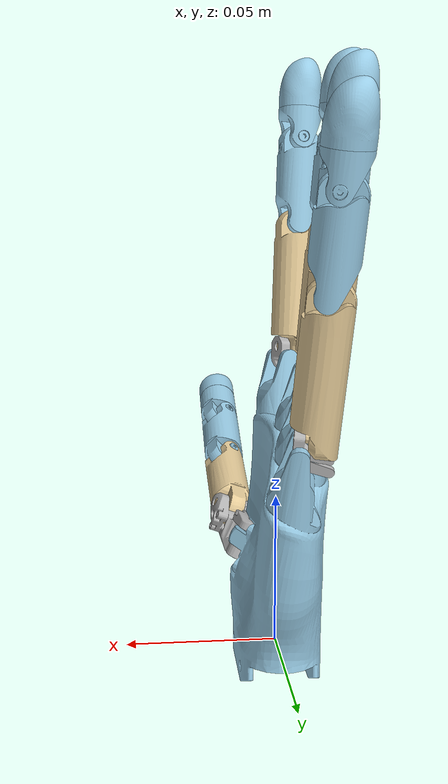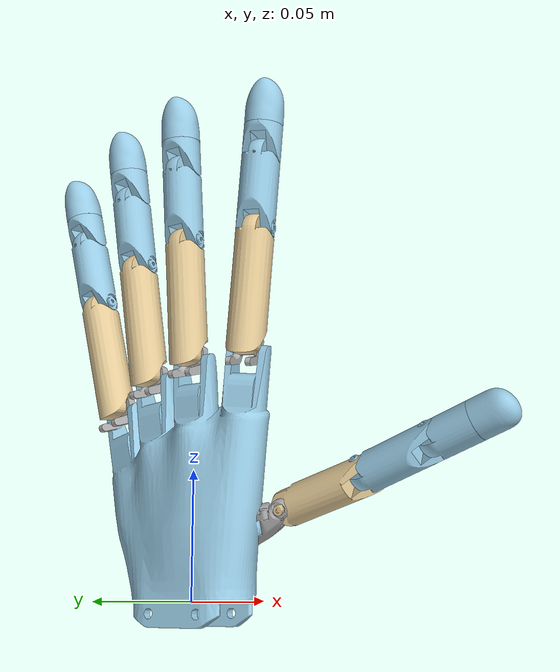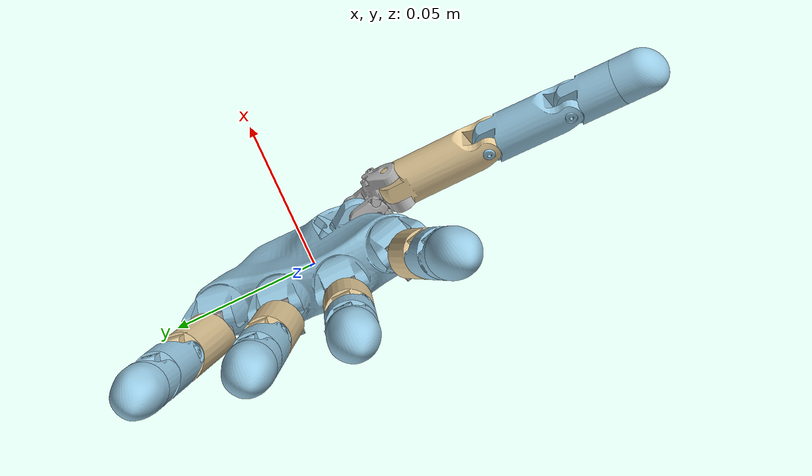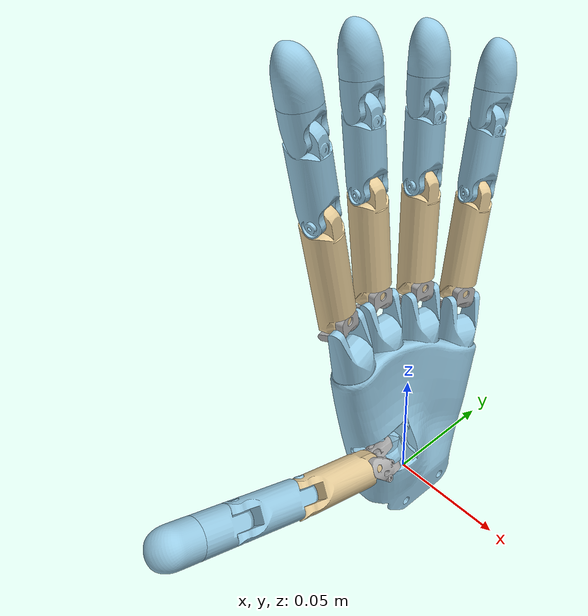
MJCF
<mujoco model="wujihand-left">
  <compiler angle="radian" meshdir="../meshes/left/" />

  <option jacobian="sparse" integrator="RK4" timestep="0.002" solver="Newton" iterations="50" tolerance="1e-10" /><default><joint armature="0.0002" damping="0.0" /></default><asset>
    <mesh name="left_palm_link" content_type="model/stl" file="left_palm_link.STL" />
    <mesh name="left_finger1_link1" content_type="model/stl" file="left_finger1_link1.STL" />
    <mesh name="left_finger1_link2" content_type="model/stl" file="left_finger1_link2.STL" />
    <mesh name="left_finger1_link3" content_type="model/stl" file="left_finger1_link3.STL" />
    <mesh name="left_finger1_link4" content_type="model/stl" file="left_finger1_link4.STL" />
    <mesh name="left_finger1_tip_link" content_type="model/stl" file="left_finger1_tip_link.STL" />
    <mesh name="left_finger2_link1" content_type="model/stl" file="left_finger2_link1.STL" />
    <mesh name="left_finger2_link2" content_type="model/stl" file="left_finger2_link2.STL" />
    <mesh name="left_finger2_link3" content_type="model/stl" file="left_finger2_link3.STL" />
    <mesh name="left_finger2_link4" content_type="model/stl" file="left_finger2_link4.STL" />
    <mesh name="left_finger2_tip_link" content_type="model/stl" file="left_finger2_tip_link.STL" />
    <mesh name="left_finger3_link1" content_type="model/stl" file="left_finger3_link1.STL" />
    <mesh name="left_finger3_link2" content_type="model/stl" file="left_finger3_link2.STL" />
    <mesh name="left_finger3_link3" content_type="model/stl" file="left_finger3_link3.STL" />
    <mesh name="left_finger3_link4" content_type="model/stl" file="left_finger3_link4.STL" />
    <mesh name="left_finger3_tip_link" content_type="model/stl" file="left_finger3_tip_link.STL" />
    <mesh name="left_finger4_link1" content_type="model/stl" file="left_finger4_link1.STL" />
    <mesh name="left_finger4_link2" content_type="model/stl" file="left_finger4_link2.STL" />
    <mesh name="left_finger4_link3" content_type="model/stl" file="left_finger4_link3.STL" />
    <mesh name="left_finger4_link4" content_type="model/stl" file="left_finger4_link4.STL" />
    <mesh name="left_finger4_tip_link" content_type="model/stl" file="left_finger4_tip_link.STL" />
    <mesh name="left_finger5_link1" content_type="model/stl" file="left_finger5_link1.STL" />
    <mesh name="left_finger5_link2" content_type="model/stl" file="left_finger5_link2.STL" />
    <mesh name="left_finger5_link3" content_type="model/stl" file="left_finger5_link3.STL" />
    <mesh name="left_finger5_link4" content_type="model/stl" file="left_finger5_link4.STL" />
    <mesh name="left_finger5_tip_link" content_type="model/stl" file="left_finger5_tip_link.STL" />
  </asset>

  <worldbody>
    <body name="left_palm_link"><inertial pos="-0.00297879327955292 -0.000452550870710431 0.0366547088987225" mass="0.16914" quat="-0.01772809 -0.04274722 0.09308295 0.99458230" diaginertia="1.40677446e-04 9.58896475e-05 5.81329061e-05" /><geom type="mesh" contype="0" conaffinity="0" group="1" density="0" rgba="0.6 0.8 0.9 1" mesh="left_palm_link" />
    <geom type="mesh" rgba="0.6 0.8 0.9 1" mesh="left_palm_link" contype="1" conaffinity="1" />
    <body name="left_finger1_link1" pos="0.0084399 -0.020587 0.028893" quat="0.682219 0.617669 0.0805047 0.382859">
      <inertial pos="-0.00246636 0.00124336 0.00779645" quat="0.904243 0.21652 0.0443878 -0.365368" mass="0.0075" diaginertia="3.37599e-07 3.01198e-07 2.11203e-07" />
      <joint name="left_finger1_joint1" pos="0 0 0" axis="0 1 0" range="0.0475 1.6033" actuatorfrcrange="-0.4452 0.4452" armature="0.0005" />
      <geom type="mesh" contype="0" conaffinity="0" group="1" density="0" rgba="0.7 0.7 0.7 1" mesh="left_finger1_link1" />
      <geom type="mesh" rgba="0.7 0.7 0.7 1" mesh="left_finger1_link1" contype="0" conaffinity="0" />
      <body name="left_finger1_link2" pos="-0.0047549 0.0058191 0.014132" quat="0.616955 0.0855901 -0.290851 -0.726255">
        <inertial pos="0.00116592 1.46603e-05 0.015656" quat="0.815906 0.0024483 -0.00462559 0.57816" mass="0.0248" diaginertia="2.81725e-06 2.75299e-06 6.79766e-07" />
        <joint name="left_finger1_joint2" pos="0 0 0" axis="0 -1 0" range="-0.1387 0.9324" actuatorfrcrange="-0.4259 0.4259" armature="0.0005" />
        <geom type="mesh" contype="0" conaffinity="0" group="1" density="0" rgba="0.9 0.8 0.6 1" mesh="left_finger1_link2" />
        <geom type="mesh" rgba="0.9 0.8 0.6 1" mesh="left_finger1_link2" contype="2" conaffinity="2" />
        <body name="left_finger1_link3" pos="0.00026671 0.0009915 0.034666" quat="0.577852 -0.0212383 -0.0150031 0.815727">
          <inertial pos="-0.0011232 1.57299e-05 0.0130566" quat="0.999951 0 0.00989566 0" mass="0.0165" diaginertia="1.4604e-06 1.42e-06 4.49604e-07" />
          <joint name="left_finger1_joint3" pos="0 0 0" axis="0 1 0" range="-0.4642 1.5623" actuatorfrcrange="-0.1888 0.1888" />
          <geom type="mesh" contype="0" conaffinity="0" group="1" density="0" rgba="0.6 0.8 0.9 1" mesh="left_finger1_link3" />
          <geom type="mesh" rgba="0.6 0.8 0.9 1" mesh="left_finger1_link3" contype="1" conaffinity="1" />
          <body name="left_finger1_link4" pos="0 -0.0002 0.0295">
            <inertial pos="-0.00163886 0.000214814 0.0113475" quat="0.705316 -0.0503617 -0.0502939 0.705311" mass="0.0206" diaginertia="2.60196e-06 2.58216e-06 7.598e-07" />
            <joint name="left_finger1_joint4" pos="0 0 0" axis="0 1 0" range="-0.4699 1.5568" actuatorfrcrange="-0.1468 0.1468" />
            <geom type="mesh" contype="0" conaffinity="0" group="1" density="0" rgba="0.6 0.8 0.9 1" mesh="left_finger1_link4" />
            <geom type="mesh" rgba="0.6 0.8 0.9 1" mesh="left_finger1_link4" contype="1" conaffinity="1" />
            <geom pos="-0.00105 0.0002 0.0313" type="mesh" contype="0" conaffinity="0" group="1" density="0" rgba="0.6 0.8 0.9 1" mesh="left_finger1_tip_link" />
            <geom pos="-0.00105 0.0002 0.0313" type="mesh" rgba="0.6 0.8 0.9 1" mesh="left_finger1_tip_link" contype="1" conaffinity="1" />
          </body>
        </body>
      </body>
    </body>
    <body name="left_finger2_link1" pos="-0.0058701 -0.029434 0.091917" quat="0.991689 0.0588295 -0.0292755 0.110614">
      <inertial pos="-0.0013291 -5.6587e-09 0.00031994" quat="0.92388 0 0.382683 0" mass="0.0032" diaginertia="1.1e-07 7e-08 5e-08" />
      <joint name="left_finger2_joint1" pos="0 0 0" axis="0 1 0" range="-0.1585 1.5604" actuatorfrcrange="-0.6188 0.6188" armature="0.0005" />
      <geom type="mesh" contype="0" conaffinity="0" group="1" density="0" rgba="0.7 0.7 0.7 1" mesh="left_finger2_link1" />
      <geom type="mesh" rgba="0.7 0.7 0.7 1" mesh="left_finger2_link1" contype="0" conaffinity="0" />
      <body name="left_finger2_link2" pos="0.0022 0 0.00400001" quat="0.707107 0 0 0.707107">
        <inertial pos="4.37869e-07 0.00615752 0.020911" quat="0.70703 0.0104245 0.0104245 0.70703" mass="0.033" diaginertia="6.34e-06 6.31472e-06 8.85281e-07" />
        <joint name="left_finger2_joint2" pos="0 0 0" axis="0 1 0" range="-0.37 0.37" actuatorfrcrange="-0.1822 0.1822" />
        <geom type="mesh" contype="0" conaffinity="0" group="1" density="0" rgba="0.9 0.8 0.6 1" mesh="left_finger2_link2" />
        <geom type="mesh" rgba="0.9 0.8 0.6 1" mesh="left_finger2_link2" contype="2" conaffinity="2" />
        <body name="left_finger2_link3" pos="0 0.00475 0.0436177" quat="0.707202 0 0 -0.707012">
          <inertial pos="-0.00112187 3.27619e-05 0.0157188" quat="0.999892 0 -0.0146884 0" mass="0.0165" diaginertia="1.47088e-06 1.44e-06 4.49118e-07" />
          <joint name="left_finger2_joint3" pos="0 0 0" axis="0 1 0" range="-0.4777 1.5485" actuatorfrcrange="-0.2251 0.2251" />
          <geom type="mesh" contype="0" conaffinity="0" group="1" density="0" rgba="0.6 0.8 0.9 1" mesh="left_finger2_link3" />
          <geom type="mesh" rgba="0.6 0.8 0.9 1" mesh="left_finger2_link3" contype="1" conaffinity="1" />
          <body name="left_finger2_link4" pos="0 -0.0002 0.0295">
            <inertial pos="-0.000802981 -1.72016e-05 0.00761201" quat="0.998028 0.01288 -0.055568 0.0261826" mass="0.01718" diaginertia="1.55462e-06 1.45763e-06 4.20116e-07" />
            <joint name="left_finger2_joint4" pos="0 0 0" axis="0 1 0" range="-0.4683 1.5753" actuatorfrcrange="-0.217 0.217" />
            <geom type="mesh" contype="0" conaffinity="0" group="1" density="0" rgba="0.6 0.8 0.9 1" mesh="left_finger2_link4" />
            <geom type="mesh" rgba="0.6 0.8 0.9 1" mesh="left_finger2_link4" contype="1" conaffinity="1" />
            <geom pos="-0.0010521 0.000210869 0.0267" type="mesh" contype="0" conaffinity="0" group="1" density="0" rgba="0.6 0.8 0.9 1" mesh="left_finger2_tip_link" />
            <geom pos="-0.0010521 0.000210869 0.0267" type="mesh" rgba="0.6 0.8 0.9 1" mesh="left_finger2_tip_link" contype="1" conaffinity="1" />
          </body>
        </body>
      </body>
    </body>
    <body name="left_finger3_link1" pos="-0.01046 -0.0074615 0.089544" quat="0.999048 1.26888e-05 -0.0436192 -0.000290547">
      <inertial pos="-0.0013291 -1.4994e-08 0.0003199" quat="0.92388 0 0.382683 0" mass="0.0032" diaginertia="1.1e-07 7e-08 5e-08" />
      <joint name="left_finger3_joint1" pos="0 0 0" axis="0 1 0" range="-0.1644 1.5516" actuatorfrcrange="-0.6494 0.6494" armature="0.0005" />
      <geom type="mesh" contype="0" conaffinity="0" group="1" density="0" rgba="0.7 0.7 0.7 1" mesh="left_finger3_link1" />
      <geom type="mesh" rgba="0.7 0.7 0.7 1" mesh="left_finger3_link1" contype="0" conaffinity="0" />
      <body name="left_finger3_link2" pos="0.0022 0 0.00400001" quat="0.707107 0 0 0.707107">
        <inertial pos="4.38062e-07 0.00615753 0.020911" quat="0.70703 0.0104245 0.0104245 0.70703" mass="0.033" diaginertia="6.34e-06 6.31472e-06 8.85281e-07" />
        <joint name="left_finger3_joint2" pos="0 0 0" axis="0 1 0" range="-0.37 0.37" actuatorfrcrange="-0.1827 0.1827" />
        <geom type="mesh" contype="0" conaffinity="0" group="1" density="0" rgba="0.9 0.8 0.6 1" mesh="left_finger3_link2" />
        <geom type="mesh" rgba="0.9 0.8 0.6 1" mesh="left_finger3_link2" contype="2" conaffinity="2" />
        <body name="left_finger3_link3" pos="0 0.00475 0.0436177" quat="0.707202 0 0 -0.707012">
          <inertial pos="-0.00112187 3.27807e-05 0.0157188" quat="0.999892 0 -0.0146884 0" mass="0.0165" diaginertia="1.47088e-06 1.44e-06 4.49118e-07" />
          <joint name="left_finger3_joint3" pos="0 0 0" axis="0 1 0" range="-0.4739 1.5512" actuatorfrcrange="-0.2078 0.2078" />
          <geom type="mesh" contype="0" conaffinity="0" group="1" density="0" rgba="0.6 0.8 0.9 1" mesh="left_finger3_link3" />
          <geom type="mesh" rgba="0.6 0.8 0.9 1" mesh="left_finger3_link3" contype="1" conaffinity="1" />
          <body name="left_finger3_link4" pos="0 -0.0002 0.0295">
            <inertial pos="-0.000801449 -1.76824e-05 0.00761202" quat="0.998029 0.0129107 -0.0554603 0.026365" mass="0.01718" diaginertia="1.55458e-06 1.45766e-06 4.20206e-07" />
            <joint name="left_finger3_joint4" pos="0 0 0" axis="0 1 0" range="-0.4684 1.5745" actuatorfrcrange="-0.2018 0.2018" />
            <geom type="mesh" contype="0" conaffinity="0" group="1" density="0" rgba="0.6 0.8 0.9 1" mesh="left_finger3_link4" />
            <geom type="mesh" rgba="0.6 0.8 0.9 1" mesh="left_finger3_link4" contype="1" conaffinity="1" />
            <geom pos="-0.0010504 0.000202672 0.0267" type="mesh" contype="0" conaffinity="0" group="1" density="0" rgba="0.6 0.8 0.9 1" mesh="left_finger3_tip_link" />
            <geom pos="-0.0010504 0.000202672 0.0267" type="mesh" rgba="0.6 0.8 0.9 1" mesh="left_finger3_tip_link" contype="1" conaffinity="1" />
          </body>
        </body>
      </body>
    </body>
    <body name="left_finger4_link1" pos="-0.0076649 0.013712 0.084429" quat="0.997789 -0.0461019 -0.0405884 -0.0254002">
      <inertial pos="-0.0013291 -9.6993e-09 0.00031986" quat="0.92388 0 0.382683 0" mass="0.0032" diaginertia="1.1e-07 7e-08 5e-08" />
      <joint name="left_finger4_joint1" pos="0 0 0" axis="0 1 0" range="-0.1554 1.5585" actuatorfrcrange="-0.6389 0.6389" armature="0.0005" />
      <geom type="mesh" contype="0" conaffinity="0" group="1" density="0" rgba="0.7 0.7 0.7 1" mesh="left_finger4_link1" />
      <geom type="mesh" rgba="0.7 0.7 0.7 1" mesh="left_finger4_link1" contype="0" conaffinity="0" />
      <body name="left_finger4_link2" pos="0.0022 0 0.00400001" quat="0.707107 0 0 0.707107">
        <inertial pos="4.36896e-07 0.00615754 0.020911" quat="0.70703 0.0104245 0.0104245 0.70703" mass="0.033" diaginertia="6.34e-06 6.31472e-06 8.85281e-07" />
        <joint name="left_finger4_joint2" pos="0 0 0" axis="0 1 0" range="-0.37 0.37" actuatorfrcrange="-0.1832 0.1832" />
        <geom type="mesh" contype="0" conaffinity="0" group="1" density="0" rgba="0.9 0.8 0.6 1" mesh="left_finger4_link2" />
        <geom type="mesh" rgba="0.9 0.8 0.6 1" mesh="left_finger4_link2" contype="2" conaffinity="2" />
        <body name="left_finger4_link3" pos="0 0.00475 0.0436177" quat="0.707202 0 0 -0.707012">
          <inertial pos="-0.00112188 3.27942e-05 0.0157188" quat="0.999892 0 -0.0146884 0" mass="0.0165" diaginertia="1.47088e-06 1.44e-06 4.49118e-07" />
          <joint name="left_finger4_joint3" pos="0 0 0" axis="0 1 0" range="-0.4765 1.5487" actuatorfrcrange="-0.2249 0.2249" />
          <geom type="mesh" contype="0" conaffinity="0" group="1" density="0" rgba="0.6 0.8 0.9 1" mesh="left_finger4_link3" />
          <geom type="mesh" rgba="0.6 0.8 0.9 1" mesh="left_finger4_link3" contype="1" conaffinity="1" />
          <body name="left_finger4_link4" pos="0 -0.0002 0.0295">
            <inertial pos="-0.000801408 -1.86048e-05 0.00761203" quat="0.998025 0.012979 -0.0554598 0.0264871" mass="0.01718" diaginertia="1.55462e-06 1.45766e-06 4.20231e-07" />
            <joint name="left_finger4_joint4" pos="0 0 0" axis="0 1 0" range="-0.4777 1.5634" actuatorfrcrange="-0.2044 0.2044" />
            <geom type="mesh" contype="0" conaffinity="0" group="1" density="0" rgba="0.6 0.8 0.9 1" mesh="left_finger4_link4" />
            <geom type="mesh" rgba="0.6 0.8 0.9 1" mesh="left_finger4_link4" contype="1" conaffinity="1" />
            <geom pos="-0.00104998 0.000202557 0.0267" type="mesh" contype="0" conaffinity="0" group="1" density="0" rgba="0.6 0.8 0.9 1" mesh="left_finger4_tip_link" />
            <geom pos="-0.00104998 0.000202557 0.0267" type="mesh" rgba="0.6 0.8 0.9 1" mesh="left_finger4_tip_link" contype="1" conaffinity="1" />
          </body>
        </body>
      </body>
    </body>
    <body name="left_finger5_link1" pos="-0.00226865 0.0340011 0.0742813" quat="0.990869 -0.0993173 -0.0383255 -0.0827362">
      <inertial pos="-0.00132909 -2.35275e-08 0.000319845" quat="0.92388 0 0.382683 0" mass="0.0032" diaginertia="1.1e-07 7e-08 5e-08" />
      <joint name="left_finger5_joint1" pos="0 0 0" axis="0 1 0" range="-0.1626 1.5585" actuatorfrcrange="-0.6441 0.6441" armature="0.0005" />
      <geom type="mesh" contype="0" conaffinity="0" group="1" density="0" rgba="0.7 0.7 0.7 1" mesh="left_finger5_link1" />
      <geom type="mesh" rgba="0.7 0.7 0.7 1" mesh="left_finger5_link1" contype="0" conaffinity="0" />
      <body name="left_finger5_link2" pos="0.0022 0 0.00400001" quat="0.707107 0 0 0.707107">
        <inertial pos="4.36753e-07 0.00615753 0.020911" quat="0.70703 0.0104245 0.0104245 0.70703" mass="0.033" diaginertia="6.34e-06 6.31472e-06 8.85281e-07" />
        <joint name="left_finger5_joint2" pos="0 0 0" axis="0 1 0" range="-0.37 0.37" actuatorfrcrange="-0.1798 0.1798" />
        <geom type="mesh" contype="0" conaffinity="0" group="1" density="0" rgba="0.9 0.8 0.6 1" mesh="left_finger5_link2" />
        <geom type="mesh" rgba="0.9 0.8 0.6 1" mesh="left_finger5_link2" contype="2" conaffinity="2" />
        <body name="left_finger5_link3" pos="0 0.00475 0.0436177" quat="0.707202 0 0 -0.707012">
          <inertial pos="-0.00112188 3.28067e-05 0.0157188" quat="0.999892 0 -0.0146884 0" mass="0.0165" diaginertia="1.47088e-06 1.44e-06 4.49118e-07" />
          <joint name="left_finger5_joint3" pos="0 0 0" axis="0 1 0" range="-0.4768 1.549" actuatorfrcrange="-0.2384 0.2384" />
          <geom type="mesh" contype="0" conaffinity="0" group="1" density="0" rgba="0.6 0.8 0.9 1" mesh="left_finger5_link3" />
          <geom type="mesh" rgba="0.6 0.8 0.9 1" mesh="left_finger5_link3" contype="1" conaffinity="1" />
          <body name="left_finger5_link4" pos="0 -0.0002 0.0295">
            <inertial pos="-0.000801156 -1.7469e-05 0.00761203" quat="0.998031 0.0128934 -0.0554374 0.0263611" mass="0.01718" diaginertia="1.55457e-06 1.45766e-06 4.20216e-07" />
            <joint name="left_finger5_joint4" pos="0 0 0" axis="0 1 0" range="-0.4683 1.5735" actuatorfrcrange="-0.1866 0.1866" />
            <geom type="mesh" contype="0" conaffinity="0" group="1" density="0" rgba="0.6 0.8 0.9 1" mesh="left_finger5_link4" />
            <geom type="mesh" rgba="0.6 0.8 0.9 1" mesh="left_finger5_link4" contype="1" conaffinity="1" />
            <geom pos="-0.00105041 0.000201047 0.0267" type="mesh" contype="0" conaffinity="0" group="1" density="0" rgba="0.6 0.8 0.9 1" mesh="left_finger5_tip_link" />
            <geom pos="-0.00105041 0.000201047 0.0267" type="mesh" rgba="0.6 0.8 0.9 1" mesh="left_finger5_tip_link" contype="1" conaffinity="1" />
          </body>
        </body>
      </body>
    </body>
  </body></worldbody>
  <actuator>
    <position name="left_finger1_joint1_actuator" joint="left_finger1_joint1" kp="0.40844710645048043" kv="0.020882010257063675" ctrlrange="0.0475 1.603" forcerange="-0.4452 0.4452" />
    <position name="left_finger1_joint2_actuator" joint="left_finger1_joint2" kp="0.6858601063643346" kv="0.030610939996373314" ctrlrange="-0.1387 0.9324" forcerange="-0.4259 0.4259" />
    <position name="left_finger1_joint3_actuator" joint="left_finger1_joint3" kp="0.2391112196099482" kv="0.010181475050560962" ctrlrange="-0.4642 1.562" forcerange="-0.1888 0.1888" />
    <position name="left_finger1_joint4_actuator" joint="left_finger1_joint4" kp="0.20736128319711747" kv="0.00909698844675045" ctrlrange="-0.4699 1.5568" forcerange="-0.1468 0.1468" />
    <position name="left_finger2_joint1_actuator" joint="left_finger2_joint1" kp="0.37352218155860073" kv="0.01882274330029718" ctrlrange="-0.1585 1.56" forcerange="-0.6188 0.6188" />
    <position name="left_finger2_joint2_actuator" joint="left_finger2_joint2" kp="0.45592448909027794" kv="0.019798167597016643" ctrlrange="-0.37 0.37" forcerange="-0.1822 0.1822" />
    <position name="left_finger2_joint3_actuator" joint="left_finger2_joint3" kp="0.24368366649522863" kv="0.010477031953162727" ctrlrange="-0.4777 1.548" forcerange="-0.2251 0.2251" />
    <position name="left_finger2_joint4_actuator" joint="left_finger2_joint4" kp="0.18026971340925335" kv="0.008240212147903584" ctrlrange="-0.4683 1.575" forcerange="-0.217 0.217" />
    <position name="left_finger3_joint1_actuator" joint="left_finger3_joint1" kp="0.3687093483646485" kv="0.01848622487024593" ctrlrange="-0.1644 1.5516" forcerange="-0.6494 0.6494" />
    <position name="left_finger3_joint2_actuator" joint="left_finger3_joint2" kp="0.4164253443634641" kv="0.018032947229953678" ctrlrange="-0.37 0.37" forcerange="-0.1827 0.1827" />
    <position name="left_finger3_joint3_actuator" joint="left_finger3_joint3" kp="0.22218607502059182" kv="0.009592200014076666" ctrlrange="-0.4739 1.551" forcerange="-0.2078 0.2078" />
    <position name="left_finger3_joint4_actuator" joint="left_finger3_joint4" kp="0.19427606072023446" kv="0.009152994605972402" ctrlrange="-0.4684 1.5745" forcerange="-0.2018 0.2018" />
    <position name="left_finger4_joint1_actuator" joint="left_finger4_joint1" kp="0.35718151495111794" kv="0.018376606800780005" ctrlrange="-0.1554 1.558" forcerange="-0.6389 0.6389" />
    <position name="left_finger4_joint2_actuator" joint="left_finger4_joint2" kp="0.42977315313086895" kv="0.01867700966212433" ctrlrange="-0.37 0.37" forcerange="-0.1832 0.1832" />
    <position name="left_finger4_joint3_actuator" joint="left_finger4_joint3" kp="0.24930151196247122" kv="0.01059512121009555" ctrlrange="-0.4765 1.5487" forcerange="-0.2249 0.2249" />
    <position name="left_finger4_joint4_actuator" joint="left_finger4_joint4" kp="0.2285032688178066" kv="0.009917602877441107" ctrlrange="-0.4777 1.563" forcerange="-0.2044 0.2044" />
    <position name="left_finger5_joint1_actuator" joint="left_finger5_joint1" kp="0.3655325975433942" kv="0.018616960278988272" ctrlrange="-0.1626 1.558" forcerange="-0.6441 0.6441" />
    <position name="left_finger5_joint2_actuator" joint="left_finger5_joint2" kp="0.41393113081120425" kv="0.018732177029667153" ctrlrange="-0.37 0.37" forcerange="-0.1798 0.1798" />
    <position name="left_finger5_joint3_actuator" joint="left_finger5_joint3" kp="0.22729367621965954" kv="0.00951005441616486" ctrlrange="-0.4768 1.549" forcerange="-0.2384 0.2384" />
    <position name="left_finger5_joint4_actuator" joint="left_finger5_joint4" kp="0.1964723550341816" kv="0.009017295241756363" ctrlrange="-0.4683 1.573" forcerange="-0.1866 0.1866" />
  </actuator>
</mujoco>
